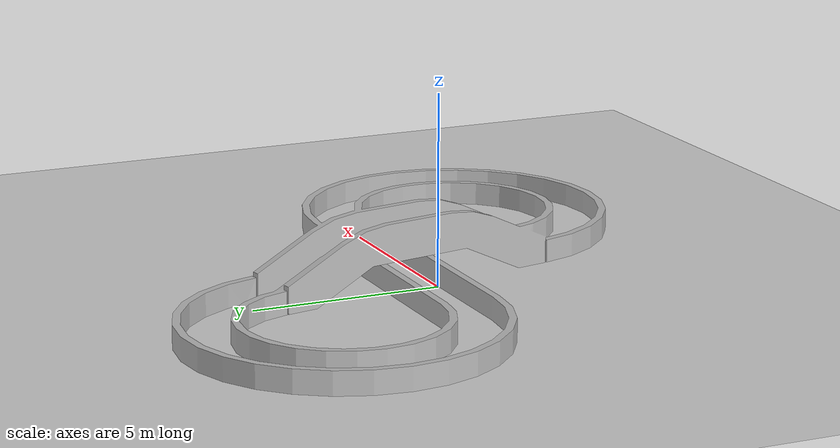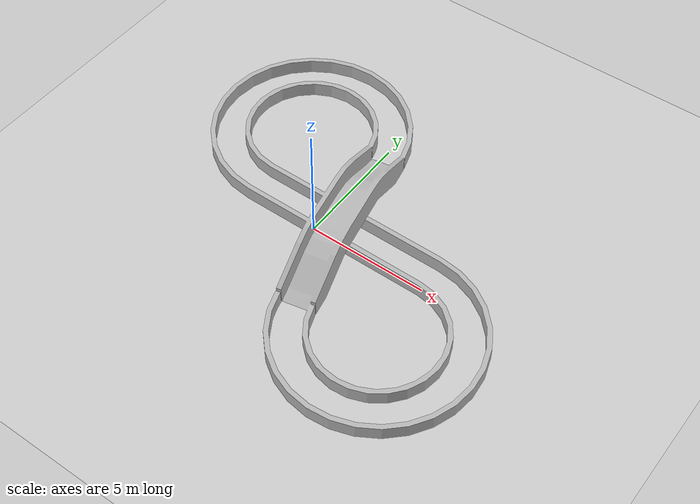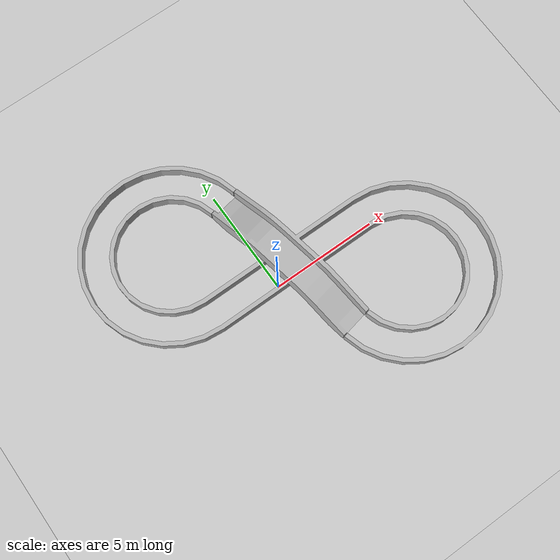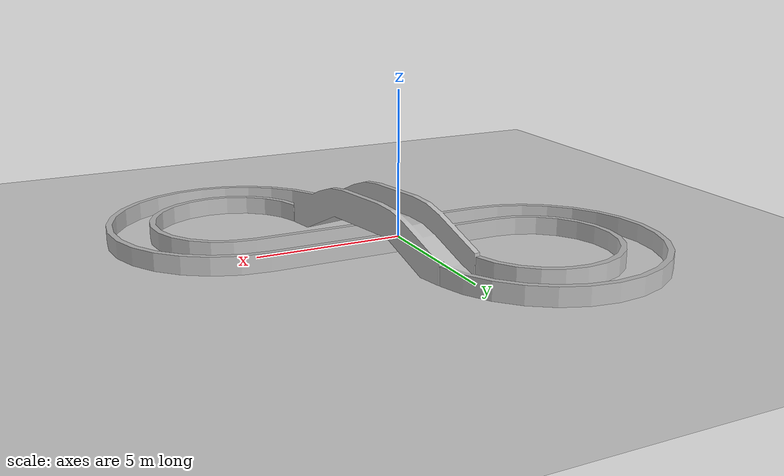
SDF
<?xml version="1.0"?>
<sdf version='1.7'>
  <world name="default">

    <include>
      <uri>model://ground_plane</uri>
    </include>

    <include>
      <uri>model://sun</uri>
    </include>

    <scene>
      <shadows>true</shadows>
    </scene>

    <gui fullscreen='0'>
      <camera name='user_camera'>
        <pose frame=''>0.319654 -0.235002 9.29441 0 1.5138 0.009599</pose>
        <view_controller>orbit</view_controller>
        <projection_type>perspective</projection_type>
      </camera>
    </gui>

    <physics type="ode">
      <real_time_update_rate>1000.0</real_time_update_rate>
      <max_step_size>0.001</max_step_size>
      <real_time_factor>1</real_time_factor>
      <ode>
        <solver>
          <type>quick</type>
          <iters>150</iters>
          <precon_iters>0</precon_iters>
          <sor>1.400000</sor>
          <use_dynamic_moi_rescaling>1</use_dynamic_moi_rescaling>
        </solver>
        <constraints>
          <cfm>0.00001</cfm>
          <erp>0.2</erp>
          <contact_max_correcting_vel>2000.000000</contact_max_correcting_vel>
          <contact_surface_layer>0.01000</contact_surface_layer>
        </constraints>
      </ode>
    </physics>

  <model name='carone'>
  <pose>4 2 -3 -1.57 0 0</pose>
    <link name='track_link'>
      <inertial>
        <pose>-3.02 -1.451 3.061 0 -0 0</pose>
        <mass>35193</mass>
        <inertia>
          <ixx>541170</ixx>
          <ixy>411040</ixy>
          <ixz>-4.1755</ixz>
          <iyy>697040</iyy>
          <iyz>0.55109</iyz>
          <izz>1.2238e+06</izz>
        </inertia>
      </inertial>
      <collision name='track_link_collision'>
        <pose>0 0 0 0 -0 0</pose>
        <geometry>
          <mesh>
            <scale>1 1 1</scale>
            <uri>model://carone/meshes/track_link.STL</uri>
          </mesh>
        </geometry>
      </collision>
      <visual name='track_link_visual'>
        <pose>0 0 0 0 0 0</pose>
        <geometry>
          <mesh>
            <scale>1 1 1</scale>
            <uri>model://carone/meshes/track_link.STL</uri>
          </mesh>
        </geometry>
      </visual>
    </link>
  </model>

  </world>
</sdf>
